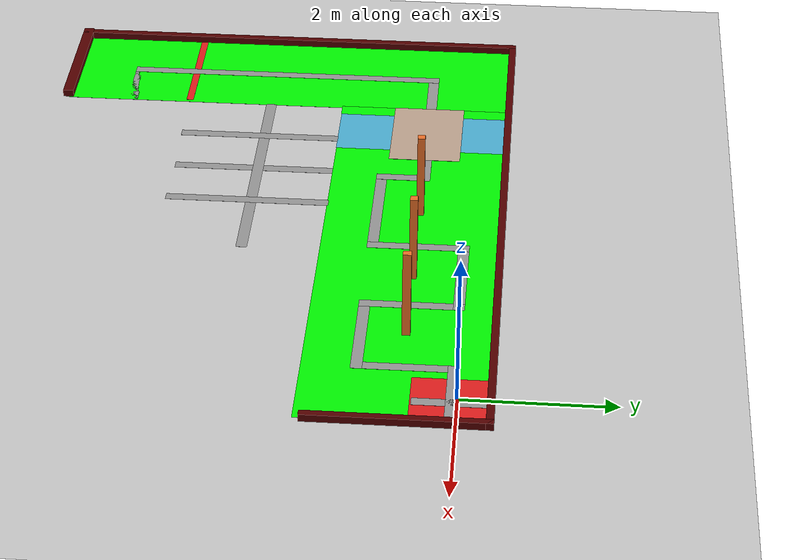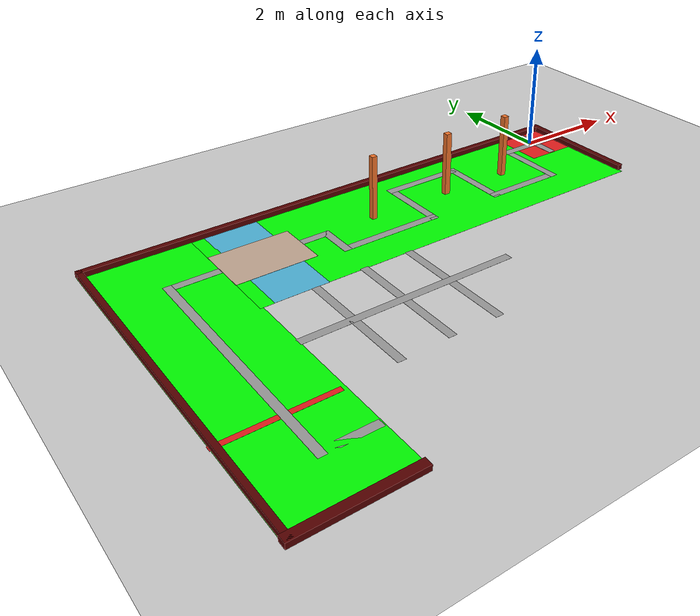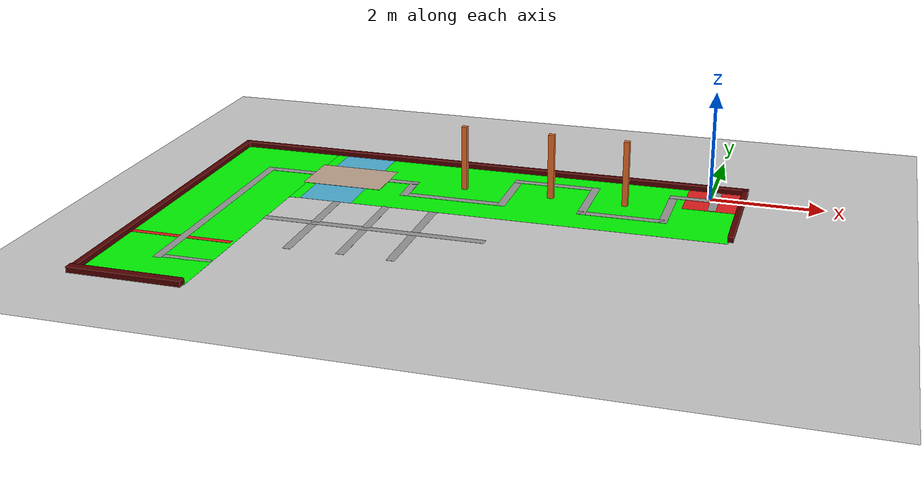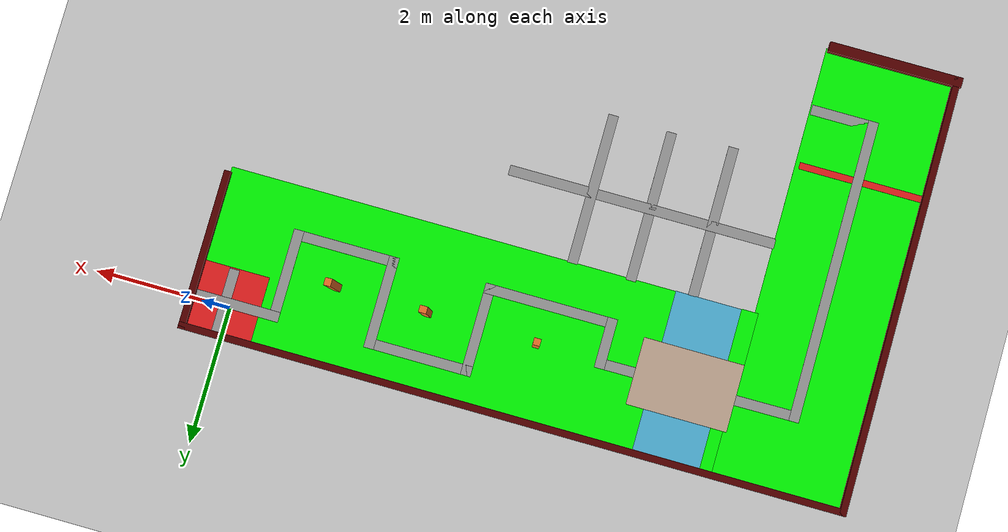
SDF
<sdf version="1.6">
 <world name="default">
  <light name="sun" type="directional">
   <pose>0 0 10 0 -0 0</pose>
   <diffuse>0.8 0.8 0.8 1</diffuse>
   <specular>0.1 0.1 0.1 1</specular>
   <attenuation>
    <range>1000</range>
    <constant>0.9</constant>
    <linear>0.01</linear>
    <quadratic>0.001</quadratic>
   </attenuation>
   <direction>-0.5 0.5 -1</direction>
  </light>
  <model name="ground_plane">
   <static>1</static>
   <link name="link">
    <collision name="collision">
     <geometry><plane><normal>0 0 1</normal><size>100 100</size></plane></geometry>
     <surface><friction><ode><mu>100</mu><mu2>50</mu2></ode></friction></surface>
    </collision>
    <visual name="visual">
     <cast_shadows>0</cast_shadows>
     <geometry><plane><normal>0 0 1</normal><size>100 100</size></plane></geometry>
     <material>
      <script><uri>file://media/materials/scripts/gazebo.material</uri><name>Gazebo/Grey</name></script>
     </material>
    </visual>
   </link>
  </model>
  <gravity>0 0 -9.8</gravity>
  <magnetic_field>6e-06 2.3e-05 -4.2e-05</magnetic_field>
  <atmosphere type="adiabatic"/>
  <physics name="default_physics" default="0" type="ode">
   <max_step_size>0.001</max_step_size>
   <real_time_factor>1</real_time_factor>
   <real_time_update_rate>1000</real_time_update_rate>
  </physics>
  <scene><ambient>0.4 0.4 0.4 1</ambient><background>0.7 0.7 0.7 1</background><shadows>1</shadows></scene>
  <spherical_coordinates>
   <surface_model>EARTH_WGS84</surface_model>
   <latitude_deg>0</latitude_deg>
   <longitude_deg>0</longitude_deg>
   <elevation>0</elevation>
   <heading_deg>0</heading_deg>
  </spherical_coordinates>
  <model name="MR1area">
   <pose>-4.36361 -2.82301 0 0 -0 0</pose>
   <link name="Wall_0">
    <collision name="Wall_0_Collision">
     <geometry><box><size>2 0.15 0.1</size></box></geometry>
     <pose>0 0 0.05 0 -0 0</pose>
    </collision>
    <visual name="Wall_0_Visual">
     <pose>0 0 0.05 0 -0 0</pose>
     <geometry><box><size>2 0.15 0.1</size></box></geometry>
     <material>
      <script><uri>file://media/materials/scripts/gazebo.material</uri><name>Gazebo/Grey</name></script>
      <ambient>0.333333 0 0 1</ambient>
     </material>
    </visual>
    <pose>-3.98602 -3.218 0 0 -0 0</pose>
   </link>
   <link name="Wall_10">
    <collision name="Wall_10_Collision">
     <geometry><box><size>6.561 0.1 0.1</size></box></geometry>
     <pose>0 0 0.05 0 -0 0</pose>
    </collision>
    <visual name="Wall_10_Visual">
     <pose>0 0 0.05 0 -0 0</pose>
     <geometry><box><size>6.561 0.1 0.1</size></box></geometry>
     <material>
      <script><uri>file://media/materials/scripts/gazebo.material</uri><name>Gazebo/Grey</name></script>
      <ambient>0.333333 0 0 1</ambient>
     </material>
    </visual>
    <pose>-4.91102 0.0125 0 0 -0 1.5708</pose>
   </link>
   <link name="Wall_12">
    <collision name="Wall_12_Collision">
     <geometry><box><size>9.94706 0.1 0.1</size></box></geometry>
     <pose>0 0 0.05 0 -0 0</pose>
    </collision>
    <visual name="Wall_12_Visual">
     <pose>0 0 0.05 0 -0 0</pose>
     <geometry><box><size>9.94706 0.1 0.1</size></box></geometry>
     <material>
      <script><uri>file://media/materials/scripts/gazebo.material</uri><name>Gazebo/Grey</name></script>
      <ambient>0.333333 0 0 1</ambient>
     </material>
    </visual>
    <pose>0.012484 3.243 0 0 -0 0</pose>
   </link>
   <link name="Wall_13">
    <collision name="Wall_13_Collision">
     <geometry><box><size>2.379 0.1 0.1</size></box></geometry>
     <pose>0 0 0.05 0 -0 0</pose>
    </collision>
    <visual name="Wall_13_Visual">
     <pose>0 0 0.05 0 -0 0</pose>
     <geometry><box><size>2.379 0.1 0.1</size></box></geometry>
     <material>
      <script><uri>file://media/materials/scripts/gazebo.material</uri><name>Gazebo/Grey</name></script>
      <ambient>0.333333 0 0 1</ambient>
     </material>
    </visual>
    <pose>4.93598 2.1035 0 0 0 -1.5708</pose>
   </link>
   <link name="Wall_15">
    <collision name="Wall_15_Collision">
     <geometry><box><size>1.5 1 0.003</size></box></geometry>
     <pose>0 0 0.004 0 -0 0</pose>
    </collision>
    <visual name="Wall_15_Visual">
     <pose>0 0 0.004 0 -0 0</pose>
     <geometry><box><size>1.5 1 0.003</size></box></geometry>
     <material>
      <script><uri>file://media/materials/scripts/gazebo.material</uri><name>Gazebo/Grey</name></script>
      <ambient>0.756863 0.65098 0.568627 1</ambient>
     </material>
    </visual>
    <pose>-2.2686 2.09358 0 0 -0 3.14159</pose>
   </link>
   <link name="Wall_17">
    <collision name="Wall_17_Collision">
     <geometry><box><size>1 0.15 0.001</size></box></geometry>
     <pose>0 0 0.0005 0 -0 0</pose>
    </collision>
    <visual name="Wall_17_Visual">
     <pose>0 0 0.0005 0 -0 0</pose>
     <geometry><box><size>1 0.15 0.001</size></box></geometry>
     <material>
      <script><uri>file://media/materials/scripts/gazebo.material</uri><name>Gazebo/Grey</name></script>
      <ambient>1 1 1 1</ambient>
     </material>
    </visual>
    <pose>-3.48402 -2.267 0 0 -0 3.14159</pose>
   </link>
   <link name="Wall_19">
    <collision name="Wall_19_Collision">
     <geometry><box><size>4.527 0.15 0.001</size></box></geometry>
     <pose>0 0 0.003 0 -0 0</pose>
    </collision>
    <visual name="Wall_19_Visual">
     <pose>0 0 0.003 0 -0 0</pose>
     <geometry><box><size>4.527 0.15 0.001</size></box></geometry>
     <material>
      <script><uri>file://media/materials/scripts/gazebo.material</uri><name>Gazebo/Grey</name></script>
      <ambient>1 1 1 1</ambient>
     </material>
    </visual>
    <pose>-3.90902 -0.0785 0 0 -0 1.5708</pose>
   </link>
   <link name="Wall_2">
    <collision name="Wall_2_Collision">
     <geometry><box><size>6.45 2 0.001</size></box></geometry>
     <pose>0 0 0.0005 0 -0 0</pose>
    </collision>
    <visual name="Wall_2_Visual">
     <pose>0 0 0.0005 0 -0 0</pose>
     <geometry><box><size>6.45 2 0.001</size></box></geometry>
     <material>
      <script><uri>file://media/materials/scripts/gazebo.material</uri><name>Gazebo/Grey</name></script>
      <ambient>0 1 0 1</ambient>
     </material>
    </visual>
    <pose>-3.96546 0.022888 0 0 -0 1.5708</pose>
   </link>
   <link name="Wall_20">
    <collision name="Wall_20_Collision">
     <geometry><box><size>3.04707 0.15 0.002</size></box></geometry>
     <pose>0 0 0.002 0 -0 0</pose>
    </collision>
    <visual name="Wall_20_Visual">
     <pose>0 0 0.002 0 -0 0</pose>
     <geometry><box><size>3.04707 0.15 0.002</size></box></geometry>
     <material>
      <script><uri>file://media/materials/scripts/gazebo.material</uri><name>Gazebo/Grey</name></script>
      <ambient>1 1 1 1</ambient>
     </material>
    </visual>
    <pose>-2.46052 2.12 0 0 -0 0.006904</pose>
   </link>
   <link name="Wall_22">
    <collision name="Wall_22_Collision">
     <geometry><box><size>0.1 0.1 1.2</size></box></geometry>
     <pose>0 0 0.6 0 -0 0</pose>
    </collision>
    <visual name="Wall_22_Visual">
     <pose>0 0 0.6 0 -0 0</pose>
     <geometry><box><size>0.1 0.1 1.2</size></box></geometry>
     <material>
      <script><uri>file://media/materials/scripts/gazebo.material</uri><name>Gazebo/Grey</name></script>
      <ambient>0.941176 0.447059 0.160784 1</ambient>
     </material>
    </visual>
    <pose>-0.045016 2.121 0 0 -0 0</pose>
   </link>
   <link name="Wall_4">
    <collision name="Wall_4_Collision">
     <geometry><box><size>6.6997 2.45 0.001</size></box></geometry>
     <pose>0 0 0.0005 0 -0 0</pose>
    </collision>
    <visual name="Wall_4_Visual">
     <pose>0 0 0.0005 0 -0 0</pose>
     <geometry><box><size>6.6997 2.45 0.001</size></box></geometry>
     <material>
      <script><uri>file://media/materials/scripts/gazebo.material</uri><name>Gazebo/Grey</name></script>
      <ambient>0 1 0 1</ambient>
     </material>
    </visual>
    <pose>1.56098 2.055 0 0 -0 0</pose>
   </link>
   <link name="Wall_50">
    <collision name="Wall_50_Collision">
     <geometry><box><size>0.11 0.1 1.2</size></box></geometry>
     <pose>0 0 0.6 0 -0 0</pose>
    </collision>
    <visual name="Wall_50_Visual">
     <pose>0 0 0.6 0 -0 0</pose>
     <geometry><box><size>0.11 0.1 1.2</size></box></geometry>
     <material>
      <script><uri>file://media/materials/scripts/gazebo.material</uri><name>Gazebo/Grey</name></script>
      <ambient>0.941176 0.447059 0.160784 1</ambient>
     </material>
    </visual>
    <pose>2.93598 2.108 0 0 -0 1.5708</pose>
   </link>
   <link name="Wall_52">
    <collision name="Wall_52_Collision">
     <geometry><box><size>0.11 0.1 1.2</size></box></geometry>
     <pose>0 0 0.6 0 -0 0</pose>
    </collision>
    <visual name="Wall_52_Visual">
     <pose>0 0 0.6 0 -0 0</pose>
     <geometry><box><size>0.11 0.1 1.2</size></box></geometry>
     <material>
      <script><uri>file://media/materials/scripts/gazebo.material</uri><name>Gazebo/Grey</name></script>
      <ambient>0.941176 0.447059 0.160784 1</ambient>
     </material>
    </visual>
    <pose>1.57698 2.115 0 0 -0 0</pose>
   </link>
   <link name="Wall_54">
    <collision name="Wall_54_Collision">
     <geometry><box><size>1.95 0.1 0.002</size></box></geometry>
     <pose>0 0 0.0015 0 -0 0</pose>
    </collision>
    <visual name="Wall_54_Visual">
     <pose>0 0 0.0015 0 -0 0</pose>
     <geometry><box><size>1.95 0.1 0.002</size></box></geometry>
     <material>
      <script><uri>file://media/materials/scripts/gazebo.material</uri><name>Gazebo/Grey</name></script>
      <ambient>0.901961 0.121569 0.121569 1</ambient>
     </material>
    </visual>
    <pose>-4.00402 -1.426 0 0 -0 3.14159</pose>
   </link>
   <link name="Wall_56">
    <collision name="Wall_56_Collision">
     <geometry><box><size>0.75 0.15 0.002</size></box></geometry>
     <pose>0 0 0.002 0 -0 0</pose>
    </collision>
    <visual name="Wall_56_Visual">
     <pose>0 0 0.002 0 -0 0</pose>
     <geometry><box><size>0.75 0.15 0.002</size></box></geometry>
     <material>
      <script><uri>file://media/materials/scripts/gazebo.material</uri><name>Gazebo/Grey</name></script>
      <ambient>1 1 1 1</ambient>
     </material>
    </visual>
    <pose>-1.01202 1.83 0 0 0 -1.5708</pose>
   </link>
   <link name="Wall_57">
    <collision name="Wall_57_Collision">
     <geometry><box><size>1.98011 0.15 0.002</size></box></geometry>
     <pose>0 0 0.001 0 -0 0</pose>
    </collision>
    <visual name="Wall_57_Visual">
     <pose>0 0 0.001 0 -0 0</pose>
     <geometry><box><size>1.98011 0.15 0.002</size></box></geometry>
     <material>
      <script><uri>file://media/materials/scripts/gazebo.material</uri><name>Gazebo/Grey</name></script>
      <ambient>1 1 1 1</ambient>
     </material>
    </visual>
    <pose>-0.097016 1.53 0 0 -0 0</pose>
   </link>
   <link name="Wall_58">
    <collision name="Wall_58_Collision">
     <geometry><box><size>1.37254 0.15 0.002</size></box></geometry>
     <pose>0 0 0.001 0 -0 0</pose>
    </collision>
    <visual name="Wall_58_Visual">
     <pose>0 0 0.001 0 -0 0</pose>
     <geometry><box><size>1.37254 0.15 0.002</size></box></geometry>
     <material>
      <script><uri>file://media/materials/scripts/gazebo.material</uri><name>Gazebo/Grey</name></script>
      <ambient>1 1 1 1</ambient>
     </material>
    </visual>
    <pose>0.817984 2.1415 0 0 -0 1.5708</pose>
   </link>
   <link name="Wall_59">
    <collision name="Wall_59_Collision">
     <geometry><box><size>1.602 0.15 0.002</size></box></geometry>
     <pose>0 0 0.001 0 -0 0</pose>
    </collision>
    <visual name="Wall_59_Visual">
     <pose>0 0 0.001 0 -0 0</pose>
     <geometry><box><size>1.602 0.15 0.002</size></box></geometry>
     <material>
      <script><uri>file://media/materials/scripts/gazebo.material</uri><name>Gazebo/Grey</name></script>
      <ambient>1 1 1 1</ambient>
     </material>
    </visual>
    <pose>1.54398 2.753 0 0 -0 0</pose>
   </link>
   <link name="Wall_6">
    <collision name="Wall_6_Collision">
     <geometry><box><size>2.45 0.25 0.001</size></box></geometry>
     <pose>0 0 0.0005 0 -0 0</pose>
    </collision>
    <visual name="Wall_6_Visual">
     <pose>0 0 0.0005 0 -0 0</pose>
     <geometry><box><size>2.45 0.25 0.001</size></box></geometry>
     <material>
      <script><uri>file://media/materials/scripts/gazebo.material</uri><name>Gazebo/Grey</name></script>
      <ambient>0 1 0 1</ambient>
     </material>
    </visual>
    <pose>-2.89302 2.043 0 0 0 -1.5708</pose>
   </link>
   <link name="Wall_60">
    <collision name="Wall_60_Collision">
     <geometry><box><size>1.373 0.15 0.002</size></box></geometry>
     <pose>0 0 0.001 0 -0 0</pose>
    </collision>
    <visual name="Wall_60_Visual">
     <pose>0 0 0.001 0 -0 0</pose>
     <geometry><box><size>1.373 0.15 0.002</size></box></geometry>
     <material>
      <script><uri>file://media/materials/scripts/gazebo.material</uri><name>Gazebo/Grey</name></script>
      <ambient>1 1 1 1</ambient>
     </material>
    </visual>
    <pose>2.26998 2.1415 0 0 0 -1.5708</pose>
   </link>
   <link name="Wall_61">
    <collision name="Wall_61_Collision">
     <geometry><box><size>1.59056 0.15 0.002</size></box></geometry>
     <pose>0 0 0.001 0 -0 0</pose>
    </collision>
    <visual name="Wall_61_Visual">
     <pose>0 0 0.001 0 -0 0</pose>
     <geometry><box><size>1.59056 0.15 0.002</size></box></geometry>
     <material>
      <script><uri>file://media/materials/scripts/gazebo.material</uri><name>Gazebo/Grey</name></script>
      <ambient>1 1 1 1</ambient>
     </material>
    </visual>
    <pose>2.98998 1.53 0 0 -0 0</pose>
   </link>
   <link name="Wall_65">
    <collision name="Wall_65_Collision">
     <geometry><box><size>1.37369 0.15 0.002</size></box></geometry>
     <pose>0 0 0.001 0 -0 0</pose>
    </collision>
    <visual name="Wall_65_Visual">
     <pose>0 0 0.001 0 -0 0</pose>
     <geometry><box><size>1.37369 0.15 0.002</size></box></geometry>
     <material>
      <script><uri>file://media/materials/scripts/gazebo.material</uri><name>Gazebo/Grey</name></script>
      <ambient>1 1 1 1</ambient>
     </material>
    </visual>
    <pose>3.70998 2.1415 0 0 -0 1.5708</pose>
   </link>
   <link name="Wall_66">
    <collision name="Wall_66_Collision">
     <geometry><box><size>1.308 0.15 0.002</size></box></geometry>
     <pose>0 0 0.002 0 -0 0</pose>
    </collision>
    <visual name="Wall_66_Visual">
     <pose>0 0 0.002 0 -0 0</pose>
     <geometry><box><size>1.308 0.15 0.002</size></box></geometry>
     <material>
      <script><uri>file://media/materials/scripts/gazebo.material</uri><name>Gazebo/Grey</name></script>
      <ambient>1 1 1 1</ambient>
     </material>
    </visual>
    <pose>4.28898 2.753 0 0 -0 0</pose>
   </link>
   <link name="Wall_68">
    <collision name="Wall_68_Collision">
     <geometry><box><size>1.01 1 0.002</size></box></geometry>
     <pose>0 0 0.001 0 -0 0</pose>
    </collision>
    <visual name="Wall_68_Visual">
     <pose>0 0 0.001 0 -0 0</pose>
     <geometry><box><size>1.01 1 0.002</size></box></geometry>
     <material>
      <script><uri>file://media/materials/scripts/gazebo.material</uri><name>Gazebo/Grey</name></script>
      <ambient>0.901961 0.121569 0.121569 1</ambient>
     </material>
    </visual>
    <pose>4.42779 2.74269 0 0 0 -1.5708</pose>
   </link>
   <link name="Wall_70">
    <collision name="Wall_70_Collision">
     <geometry><box><size>1 0.15 0.003</size></box></geometry>
     <pose>0 0 0.0015 0 -0 0</pose>
    </collision>
    <visual name="Wall_70_Visual">
     <pose>0 0 0.0015 0 -0 0</pose>
     <geometry><box><size>1 0.15 0.003</size></box></geometry>
     <material>
      <script><uri>file://media/materials/scripts/gazebo.material</uri><name>Gazebo/Grey</name></script>
      <ambient>1 1 1 1</ambient>
     </material>
    </visual>
    <pose>4.44798 2.757 0 0 0 -1.5708</pose>
   </link>
   <link name="Wall_72">
    <collision name="Wall_72_Collision">
     <geometry><box><size>4 0.15 0.001</size></box></geometry>
     <pose>0 0 0.0005 0 -0 0</pose>
    </collision>
    <visual name="Wall_72_Visual">
     <pose>0 0 0.0005 0 -0 0</pose>
     <geometry><box><size>4 0.15 0.001</size></box></geometry>
     <material>
      <script><uri>file://media/materials/scripts/gazebo.material</uri><name>Gazebo/Grey</name></script>
      <ambient>1 1 1 1</ambient>
     </material>
    </visual>
    <pose>-0.983016 -0.22 0 0 -0 0</pose>
   </link>
   <link name="Wall_74">
    <collision name="Wall_74_Collision">
     <geometry><box><size>2.25 0.15 0.001</size></box></geometry>
     <pose>0 0 0.0005 0 -0 0</pose>
    </collision>
    <visual name="Wall_74_Visual">
     <pose>0 0 0.0005 0 -0 0</pose>
     <geometry><box><size>2.25 0.15 0.001</size></box></geometry>
     <material>
      <script><uri>file://media/materials/scripts/gazebo.material</uri><name>Gazebo/Grey</name></script>
      <ambient>1 1 1 1</ambient>
     </material>
    </visual>
    <pose>-2.04202 -0.295 0 0 0 -1.5708</pose>
   </link>
   <link name="Wall_76">
    <collision name="Wall_76_Collision">
     <geometry><box><size>2.25 0.15 0.001</size></box></geometry>
     <pose>0 0 0.0005 0 -0 0</pose>
    </collision>
    <visual name="Wall_76_Visual">
     <pose>0 0 0.0005 0 -0 0</pose>
     <geometry><box><size>2.25 0.15 0.001</size></box></geometry>
     <material>
      <script><uri>file://media/materials/scripts/gazebo.material</uri><name>Gazebo/Grey</name></script>
      <ambient>1 1 1 1</ambient>
     </material>
    </visual>
    <pose>-1.11402 -0.264 0 0 0 -1.5708</pose>
   </link>
   <link name="Wall_78">
    <collision name="Wall_78_Collision">
     <geometry><box><size>2.25 0.15 0.001</size></box></geometry>
     <pose>0 0 0.0005 0 -0 0</pose>
    </collision>
    <visual name="Wall_78_Visual">
     <pose>0 0 0.0005 0 -0 0</pose>
     <geometry><box><size>2.25 0.15 0.001</size></box></geometry>
     <material>
      <script><uri>file://media/materials/scripts/gazebo.material</uri><name>Gazebo/Grey</name></script>
      <ambient>1 1 1 1</ambient>
     </material>
    </visual>
    <pose>-0.231893 -0.279469 0 0 0 -1.5708</pose>
   </link>
   <link name="Wall_8">
    <collision name="Wall_8_Collision">
     <geometry><box><size>2.45 1 0.001</size></box></geometry>
     <pose>0 0 0.0005 0 -0 0</pose>
    </collision>
    <visual name="Wall_8_Visual">
     <pose>0 0 0.0005 0 -0 0</pose>
     <geometry><box><size>2.45 1 0.001</size></box></geometry>
     <material>
      <script><uri>file://media/materials/scripts/gazebo.material</uri><name>Gazebo/Grey</name></script>
      <ambient>0.305882 0.698039 0.843137 1</ambient>
     </material>
    </visual>
    <pose>-2.28287 2.04973 0 0 0 -1.5708</pose>
   </link>
   <static>1</static>
  </model>
 </world>
</sdf>
